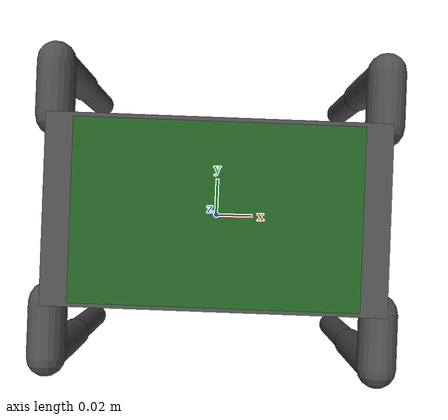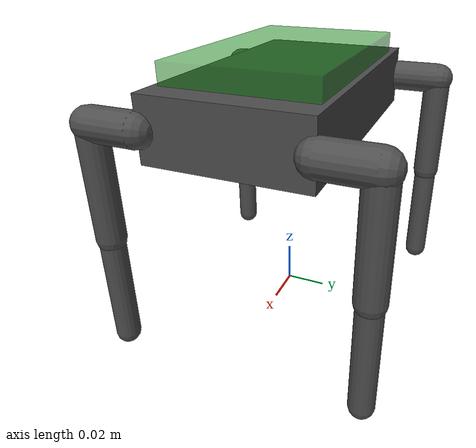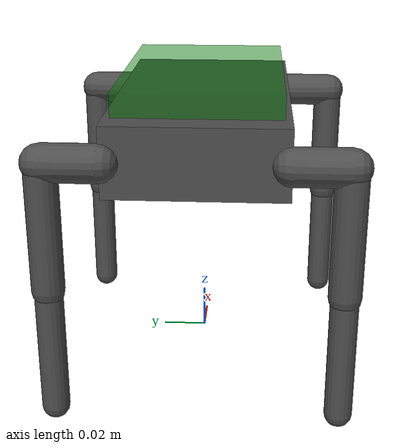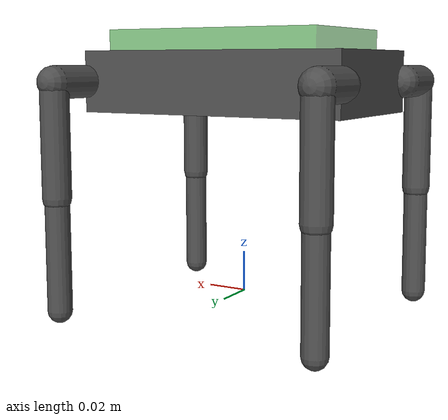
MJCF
<mujoco model="freenove_dog">

  <compiler angle="radian" meshdir="assets" autolimits="true"/>

  <option timestep="0.005" iterations="10" ls_iterations="20" gravity="0 0 -9.81">
    <flag warmstart="enable"/>
  </option>

  <default>
    <default class="visual">
      <geom contype="0" conaffinity="0" group="2" rgba="0.3 0.3 0.3 1"/>
    </default>
    <default class="collision">
      <geom contype="1" conaffinity="1" group="3" rgba="0.5 0.5 0.5 0.5"/>
    </default>
    <default class="foot">
      <geom contype="1" conaffinity="1" group="3" type="sphere" size="0.008"
            rgba="0.2 0.2 0.2 1" condim="3" priority="1"
            friction="0.8 0.02 0.01"
            solimp="0.015 1 0.03" solref="0.015 1"/>
    </default>
    <default class="hip_joint">
      <joint type="hinge" damping="0.05" armature="0.005"
             limited="true" range="-0.6 0.6"/>
    </default>
    <default class="shoulder_joint">
      <joint type="hinge" damping="0.05" armature="0.005"
             limited="true" range="-1.4 1.4"/>
    </default>
    <default class="knee_joint">
      <joint type="hinge" damping="0.05" armature="0.005"
             limited="true" range="-1.6 1.6"/>
    </default>
  </default>

  <asset>
    <texture name="grid" type="2d" builtin="checker" rgb1="0.8 0.8 0.8"
             rgb2="0.6 0.6 0.6" width="256" height="256"/>
    <material name="grid_mat" texture="grid" texrepeat="8 8" reflectance="0.1"/>
    <material name="body_mat" rgba="0.15 0.15 0.15 1" shininess="0.5"/>
    <material name="leg_mat" rgba="0.25 0.25 0.3 1" shininess="0.3"/>
    <material name="foot_mat" rgba="0.1 0.1 0.1 1"/>
  </asset>

  <worldbody>
    <!-- Spotlight tracking the robot -->
    <light name="spotlight" pos="0 0 3" dir="0 0 -1" diffuse="0.8 0.8 0.8"
           specular="0.3 0.3 0.3" cutoff="60" mode="trackcom"/>
    <light name="ambient" pos="0 0 4" directional="true"
           diffuse="0.4 0.4 0.4" ambient="0.2 0.2 0.2"/>

    <!-- ========================== BASE BODY ========================== -->
    <body name="base" pos="0 0 0.105">
      <freejoint name="floating_base_joint"/>

      <!-- IMU sensor site at center of base -->
      <site name="imu" pos="0 0 0" group="5"/>

      <!-- Base visual: 136mm x 76mm x 30mm box -->
      <geom class="visual" type="box" size="0.068 0.038 0.015"
            pos="0 0 0" material="body_mat"/>

      <!-- Base collision geoms -->
      <geom name="base_collision" class="collision" type="box"
            size="0.068 0.038 0.015" pos="0 0 0"/>

      <!-- PCB / electronics plate (visual only) -->
      <geom class="visual" type="box" size="0.055 0.035 0.005"
            pos="0 0 0.02" rgba="0.0 0.5 0.0 0.5"/>

      <inertial mass="0.250" pos="0 0 0"
               diaginertia="0.0003 0.0006 0.0007"/>

      <!-- =================== LEFT FRONT LEG (LF) =================== -->
      <body name="LF_HIP" pos="0.068 0.038 0">
        <inertial mass="0.015" pos="0 0.0115 0"
                 diaginertia="2e-6 1e-6 2e-6"/>
        <joint name="LF_HAA" class="hip_joint" axis="1 0 0"/>

        <!-- Hip link visual: 23mm capsule pointing laterally (+Y) -->
        <geom class="visual" type="capsule" fromto="0 0 0 0 0.023 0"
              size="0.008" material="leg_mat"/>
        <geom name="LF_hip_collision" class="collision" type="capsule"
              fromto="0 0 0 0 0.023 0" size="0.01"/>

        <body name="LF_THIGH" pos="0 0.023 0">
          <inertial mass="0.025" pos="0 0 -0.0275"
                   diaginertia="8e-6 8e-6 1e-6"/>
          <joint name="LF_HFE" class="shoulder_joint" axis="0 1 0"/>

          <!-- Femur: 55mm capsule pointing downward (-Z) -->
          <geom class="visual" type="capsule" fromto="0 0 0 0 0 -0.055"
                size="0.007" material="leg_mat"/>
          <geom name="LF_thigh_collision" class="collision" type="capsule"
                fromto="0 0 0 0 0 -0.055" size="0.009"/>

          <body name="LF_SHANK" pos="0 0 -0.055">
            <inertial mass="0.020" pos="0 0 -0.0275"
                     diaginertia="6e-6 6e-6 1e-6"/>
            <joint name="LF_KFE" class="knee_joint" axis="0 1 0"/>

            <!-- Tibia: 55mm capsule pointing downward (-Z) -->
            <geom class="visual" type="capsule" fromto="0 0 0 0 0 -0.055"
                  size="0.006" material="leg_mat"/>
            <geom name="LF_shank_collision" class="collision" type="capsule"
                  fromto="0 0 0 0 0 -0.055" size="0.008"/>

            <!-- Foot contact site and sphere at bottom of tibia -->
            <site name="LF" pos="0 0 -0.055" group="4"/>
            <geom name="LF_foot" class="foot" pos="0 0 -0.055"
                  material="foot_mat"/>
          </body>
        </body>
      </body>

      <!-- =================== RIGHT FRONT LEG (RF) =================== -->
      <!--
        Hip attachment point: (+68mm, -38mm, 0) in body frame
        Mirror of LF: hip link goes in -Y direction
      -->
      <body name="RF_HIP" pos="0.068 -0.038 0">
        <inertial mass="0.015" pos="0 -0.0115 0"
                 diaginertia="2e-6 1e-6 2e-6"/>
        <joint name="RF_HAA" class="hip_joint" axis="1 0 0"/>

        <!-- Hip link: 23mm capsule pointing laterally (-Y) -->
        <geom class="visual" type="capsule" fromto="0 0 0 0 -0.023 0"
              size="0.008" material="leg_mat"/>
        <geom name="RF_hip_collision" class="collision" type="capsule"
              fromto="0 0 0 0 -0.023 0" size="0.01"/>

        <body name="RF_THIGH" pos="0 -0.023 0">
          <inertial mass="0.025" pos="0 0 -0.0275"
                   diaginertia="8e-6 8e-6 1e-6"/>
          <joint name="RF_HFE" class="shoulder_joint" axis="0 1 0"/>

          <!-- Femur: 55mm capsule downward -->
          <geom class="visual" type="capsule" fromto="0 0 0 0 0 -0.055"
                size="0.007" material="leg_mat"/>
          <geom name="RF_thigh_collision" class="collision" type="capsule"
                fromto="0 0 0 0 0 -0.055" size="0.009"/>

          <body name="RF_SHANK" pos="0 0 -0.055">
            <inertial mass="0.020" pos="0 0 -0.0275"
                     diaginertia="6e-6 6e-6 1e-6"/>
            <joint name="RF_KFE" class="knee_joint" axis="0 1 0"/>

            <!-- Tibia: 55mm capsule downward -->
            <geom class="visual" type="capsule" fromto="0 0 0 0 0 -0.055"
                  size="0.006" material="leg_mat"/>
            <geom name="RF_shank_collision" class="collision" type="capsule"
                  fromto="0 0 0 0 0 -0.055" size="0.008"/>

            <site name="RF" pos="0 0 -0.055" group="4"/>
            <geom name="RF_foot" class="foot" pos="0 0 -0.055"
                  material="foot_mat"/>
          </body>
        </body>
      </body>

      <!-- =================== LEFT HIND LEG (LH) =================== -->
      <!--
        Hip attachment point: (-68mm, +38mm, 0) in body frame
        Same lateral direction as LF, but rear position
      -->
      <body name="LH_HIP" pos="-0.068 0.038 0">
        <inertial mass="0.015" pos="0 0.0115 0"
                 diaginertia="2e-6 1e-6 2e-6"/>
        <joint name="LH_HAA" class="hip_joint" axis="1 0 0"/>

        <!-- Hip link: 23mm capsule pointing laterally (+Y) -->
        <geom class="visual" type="capsule" fromto="0 0 0 0 0.023 0"
              size="0.008" material="leg_mat"/>
        <geom name="LH_hip_collision" class="collision" type="capsule"
              fromto="0 0 0 0 0.023 0" size="0.01"/>

        <body name="LH_THIGH" pos="0 0.023 0">
          <inertial mass="0.025" pos="0 0 -0.0275"
                   diaginertia="8e-6 8e-6 1e-6"/>
          <joint name="LH_HFE" class="shoulder_joint" axis="0 1 0"/>

          <!-- Femur: 55mm capsule downward -->
          <geom class="visual" type="capsule" fromto="0 0 0 0 0 -0.055"
                size="0.007" material="leg_mat"/>
          <geom name="LH_thigh_collision" class="collision" type="capsule"
                fromto="0 0 0 0 0 -0.055" size="0.009"/>

          <body name="LH_SHANK" pos="0 0 -0.055">
            <inertial mass="0.020" pos="0 0 -0.0275"
                     diaginertia="6e-6 6e-6 1e-6"/>
            <joint name="LH_KFE" class="knee_joint" axis="0 1 0"/>

            <!-- Tibia: 55mm capsule downward -->
            <geom class="visual" type="capsule" fromto="0 0 0 0 0 -0.055"
                  size="0.006" material="leg_mat"/>
            <geom name="LH_shank_collision" class="collision" type="capsule"
                  fromto="0 0 0 0 0 -0.055" size="0.008"/>

            <site name="LH" pos="0 0 -0.055" group="4"/>
            <geom name="LH_foot" class="foot" pos="0 0 -0.055"
                  material="foot_mat"/>
          </body>
        </body>
      </body>

      <!-- =================== RIGHT HIND LEG (RH) =================== -->
      <!--
        Hip attachment point: (-68mm, -38mm, 0) in body frame
        Mirror of LH
      -->
      <body name="RH_HIP" pos="-0.068 -0.038 0">
        <inertial mass="0.015" pos="0 -0.0115 0"
                 diaginertia="2e-6 1e-6 2e-6"/>
        <joint name="RH_HAA" class="hip_joint" axis="1 0 0"/>

        <!-- Hip link: 23mm capsule pointing laterally (-Y) -->
        <geom class="visual" type="capsule" fromto="0 0 0 0 -0.023 0"
              size="0.008" material="leg_mat"/>
        <geom name="RH_hip_collision" class="collision" type="capsule"
              fromto="0 0 0 0 -0.023 0" size="0.01"/>

        <body name="RH_THIGH" pos="0 -0.023 0">
          <inertial mass="0.025" pos="0 0 -0.0275"
                   diaginertia="8e-6 8e-6 1e-6"/>
          <joint name="RH_HFE" class="shoulder_joint" axis="0 1 0"/>

          <!-- Femur: 55mm capsule downward -->
          <geom class="visual" type="capsule" fromto="0 0 0 0 0 -0.055"
                size="0.007" material="leg_mat"/>
          <geom name="RH_thigh_collision" class="collision" type="capsule"
                fromto="0 0 0 0 0 -0.055" size="0.009"/>

          <body name="RH_SHANK" pos="0 0 -0.055">
            <inertial mass="0.020" pos="0 0 -0.0275"
                     diaginertia="6e-6 6e-6 1e-6"/>
            <joint name="RH_KFE" class="knee_joint" axis="0 1 0"/>

            <!-- Tibia: 55mm capsule downward -->
            <geom class="visual" type="capsule" fromto="0 0 0 0 0 -0.055"
                  size="0.006" material="leg_mat"/>
            <geom name="RH_shank_collision" class="collision" type="capsule"
                  fromto="0 0 0 0 0 -0.055" size="0.008"/>

            <site name="RH" pos="0 0 -0.055" group="4"/>
            <geom name="RH_foot" class="foot" pos="0 0 -0.055"
                  material="foot_mat"/>
          </body>
        </body>
      </body>

    </body> <!-- end base -->
  </worldbody>

  <!-- Prevent self-collision between base and thigh bodies -->
  <contact>
    <exclude body1="base" body2="LF_HIP"/>
    <exclude body1="base" body2="RF_HIP"/>
    <exclude body1="base" body2="LH_HIP"/>
    <exclude body1="base" body2="RH_HIP"/>
    <exclude body1="base" body2="LF_THIGH"/>
    <exclude body1="base" body2="RF_THIGH"/>
    <exclude body1="base" body2="LH_THIGH"/>
    <exclude body1="base" body2="RH_THIGH"/>
    <exclude body1="LF_HIP" body2="LF_THIGH"/>
    <exclude body1="RF_HIP" body2="RF_THIGH"/>
    <exclude body1="LH_HIP" body2="LH_THIGH"/>
    <exclude body1="RH_HIP" body2="RH_THIGH"/>
  </contact>

  <!-- IMU and momentum sensors (required by mjlab velocity task) -->
  <sensor>
    <gyro name="imu_ang_vel" site="imu"/>
    <velocimeter name="imu_lin_vel" site="imu"/>
    <accelerometer name="imu_lin_acc" site="imu"/>
    <subtreeangmom name="root_angmom" body="base"/>
  </sensor>

</mujoco>
